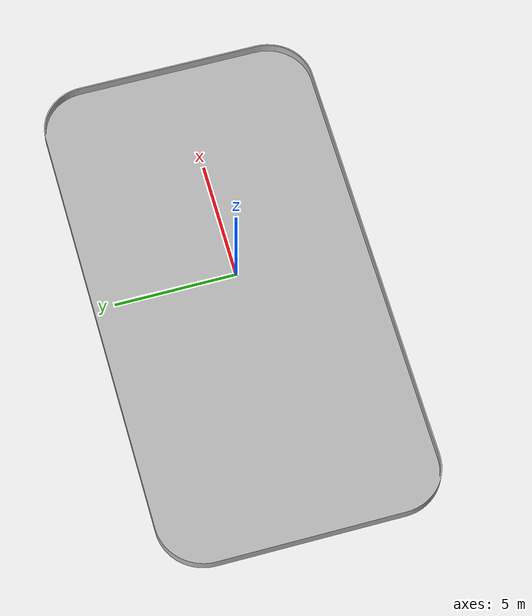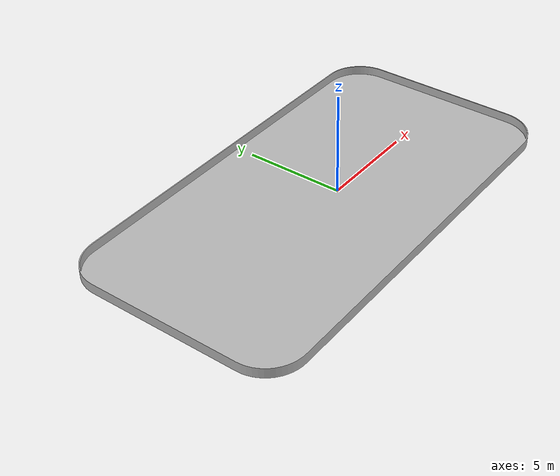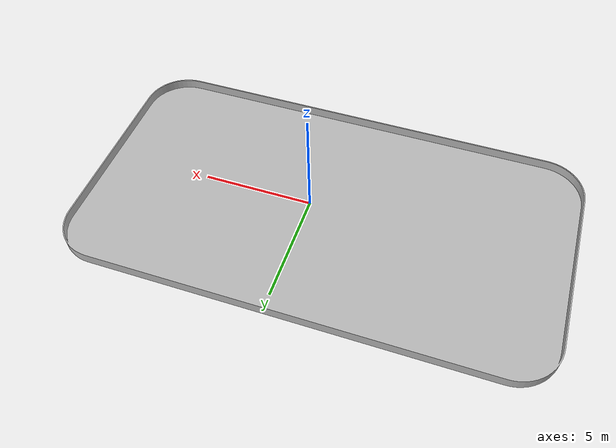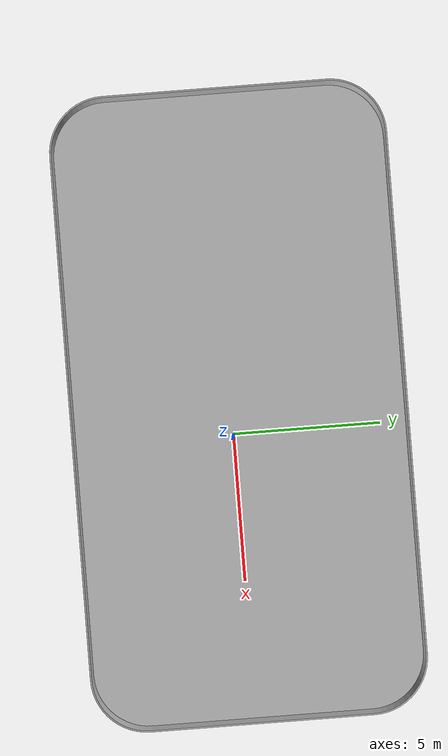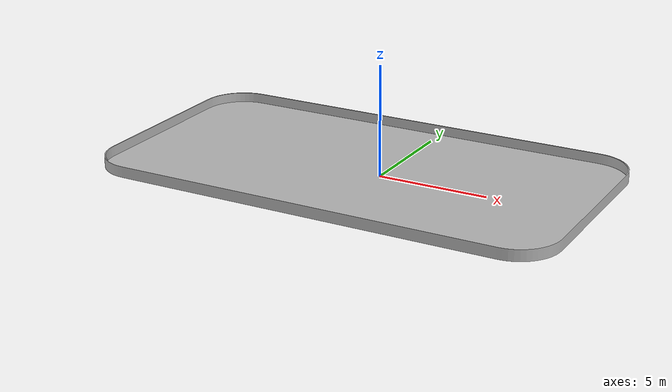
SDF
<?xml version="1.0" encoding="UTF-8"?>
<sdf version="1.6">
    <world name="flw">
        <!-- Core Gazebo system plugins -->
        <plugin
            filename="gz-sim-physics-system"
            name="gz::sim::systems::Physics">
        </plugin>
        <plugin
            filename="gz-sim-user-commands-system"
            name="gz::sim::systems::UserCommands">
        </plugin>
        <plugin
            filename="gz-sim-scene-broadcaster-system"
            name="gz::sim::systems::SceneBroadcaster">
        </plugin>
        <plugin
            filename="gz-sim-sensors-system"
            name="gz::sim::systems::Sensors">
            <render_engine>ogre2</render_engine>
        </plugin>
        <plugin
            filename="gz-sim-imu-system"
            name="gz::sim::systems::Imu">
        </plugin>

        <!-- Old Gazebo Classic plugin removed for new Gazebo compatibility -->
        <physics type="ode">
            <real_time_update_rate>1000.0</real_time_update_rate>
            <max_step_size>0.001</max_step_size>
            <real_time_factor>1</real_time_factor>
            <ode>
                <solver>
                    <type>quick</type>
                    <iters>100</iters>
                    <precon_iters>0</precon_iters>
                    <sor>1.400000</sor>
                    <use_dynamic_moi_rescaling>1</use_dynamic_moi_rescaling>
                </solver>
                <constraints>
                    <cfm>0.00001</cfm>
                    <erp>0.2</erp>
                    <contact_max_correcting_vel>2000.000000</contact_max_correcting_vel>
                    <contact_surface_layer>0.01000</contact_surface_layer>
                </constraints>
            </ode>
        </physics>
        <scene>
            <ambient>0.0 0.0 0.0 1.0</ambient>
            <shadows>1</shadows>
        </scene>

        <include>
            <uri>model://sun</uri>
        </include>

        <model name="arena_model">
            <pose>0 0 0  0 0 0</pose>
            <static>true</static>
            <link name="arena_link">
                <visual name="visual">
                <geometry>
                    <!-- Relative path defined in package.xml -->
                    <mesh><uri>model://arena/arena.dae</uri></mesh>
                </geometry>
                </visual>
                <collision name="collision">
                    <geometry>
                        <!-- Relative path defined in package.xml -->
                        <mesh><uri>model://arena/arena.dae</uri></mesh>
                    </geometry>
                    <surface>
                        <friction>
                            <ode>
                                <mu>100</mu>
                                <mu2>50</mu2>
                            </ode>
                        </friction>
                    </surface>
                </collision>
            </link>
        </model>
    </world>
</sdf>
